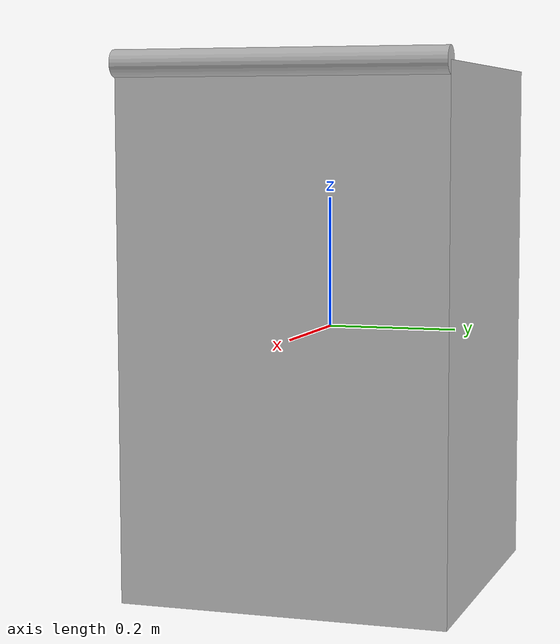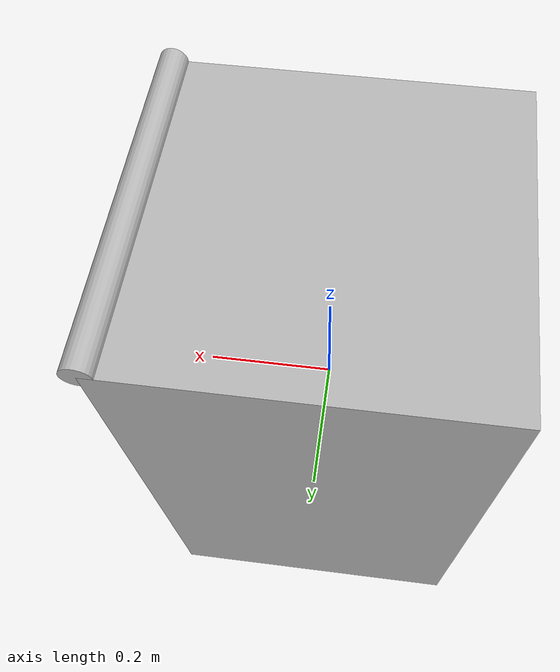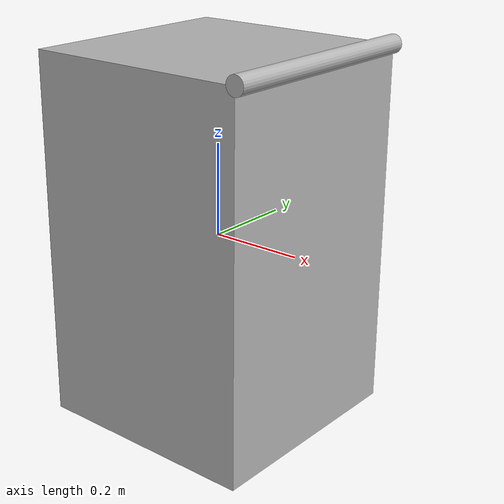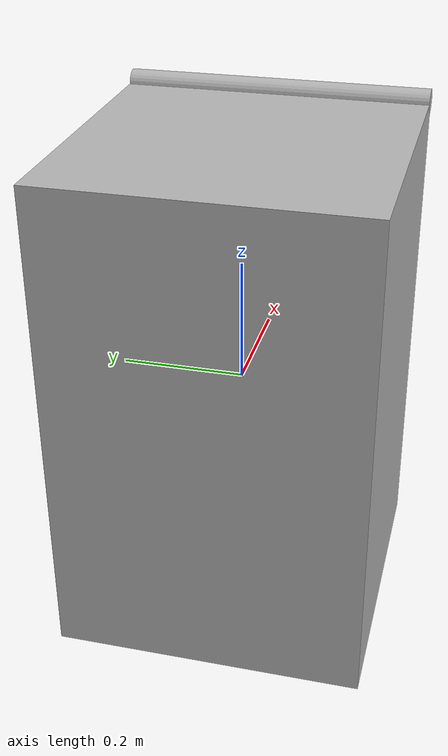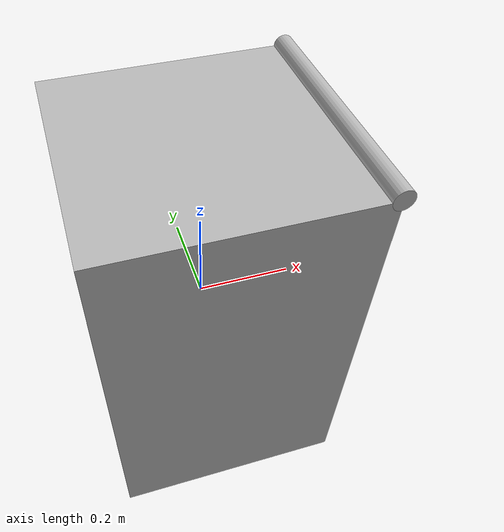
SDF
<?xml version='1.0'?>
<sdf version='1.7'>
  <model name='table_model'>
    <link name='base_link'>
      <inertial>
        <pose>0.00495 -0.00396 0.003964 0 -0 0</pose>
        <mass>1.01</mass>
        <inertia>
          <ixx>0.103271</ixx>
          <ixy>0.0019802</ixy>
          <ixz>-0.00198177</ixz>
          <iyy>0.104162</iyy>
          <iyz>0.00158542</iyz>
          <izz>0.104159</izz>
        </inertia>
      </inertial>
      <self_collide>0</self_collide>
      <enable_wind>0</enable_wind>
      <kinematic>0</kinematic>
      <pose>0 0 0 0 -0 0</pose>
      <visual name='base_link_visual'>
        <pose>0 0 0 0 -0 0</pose>
        <geometry>
          <box>
            <size>0.5 0.5 0.8</size>
          </box>
        </geometry>
        <material>
          <shader type='pixel'/>
        </material>
        <transparency>0</transparency>
        <cast_shadows>1</cast_shadows>
      </visual>
      <visual name='base_link_fixed_joint_lump__handle_link_visual_1'>
        <pose>0.25 0 0.4 1.57 -0 0</pose>
        <geometry>
          <cylinder>
            <length>0.5</length>
            <radius>0.02</radius>
          </cylinder>
        </geometry>
        <material>
          <shader type='pixel'/>
        </material>
        <transparency>0</transparency>
        <cast_shadows>1</cast_shadows>
      </visual>
      <collision name='base_link_collision'>
        <laser_retro>0</laser_retro>
        <max_contacts>10</max_contacts>
        <pose>0 0 0 0 -0 0</pose>
        <geometry>
          <box>
            <size>0.5 0.5 0.8</size>
          </box>
        </geometry>
        <surface>
          <friction>
            <ode>
              <mu>1</mu>
              <mu2>1</mu2>
              <fdir1>0 0 0</fdir1>
              <slip1>0</slip1>
              <slip2>0</slip2>
            </ode>
            <torsional>
              <coefficient>1</coefficient>
              <patch_radius>0</patch_radius>
              <surface_radius>0</surface_radius>
              <use_patch_radius>1</use_patch_radius>
              <ode>
                <slip>0</slip>
              </ode>
            </torsional>
          </friction>
          <bounce>
            <restitution_coefficient>0</restitution_coefficient>
            <threshold>1e+06</threshold>
          </bounce>
          <contact>
            <collide_without_contact>0</collide_without_contact>
            <collide_without_contact_bitmask>1</collide_without_contact_bitmask>
            <collide_bitmask>1</collide_bitmask>
            <ode>
              <soft_cfm>0</soft_cfm>
              <soft_erp>0.2</soft_erp>
              <kp>1e+13</kp>
              <kd>1</kd>
              <max_vel>0.01</max_vel>
              <min_depth>0</min_depth>
            </ode>
            <bullet>
              <split_impulse>1</split_impulse>
              <split_impulse_penetration_threshold>-0.01</split_impulse_penetration_threshold>
              <soft_cfm>0</soft_cfm>
              <soft_erp>0.2</soft_erp>
              <kp>1e+13</kp>
              <kd>1</kd>
            </bullet>
          </contact>
        </surface>
      </collision>
      <collision name='base_link_fixed_joint_lump__handle_link_collision_1'>
        <laser_retro>0</laser_retro>
        <max_contacts>10</max_contacts>
        <pose>0.25 0 0.4 1.57 -0 0</pose>
        <geometry>
          <cylinder>
            <radius>0.02</radius>
            <length>0.5</length>
          </cylinder>
        </geometry>
        <surface>
          <friction>
            <ode>
              <mu>1</mu>
              <mu2>1</mu2>
              <fdir1>0 0 0</fdir1>
              <slip1>0</slip1>
              <slip2>0</slip2>
            </ode>
            <torsional>
              <coefficient>1</coefficient>
              <patch_radius>0</patch_radius>
              <surface_radius>0</surface_radius>
              <use_patch_radius>1</use_patch_radius>
              <ode>
                <slip>0</slip>
              </ode>
            </torsional>
          </friction>
          <bounce>
            <restitution_coefficient>0</restitution_coefficient>
            <threshold>1e+06</threshold>
          </bounce>
          <contact>
            <collide_without_contact>0</collide_without_contact>
            <collide_without_contact_bitmask>1</collide_without_contact_bitmask>
            <collide_bitmask>1</collide_bitmask>
            <ode>
              <soft_cfm>0</soft_cfm>
              <soft_erp>0.2</soft_erp>
              <kp>1e+13</kp>
              <kd>1</kd>
              <max_vel>0.01</max_vel>
              <min_depth>0</min_depth>
            </ode>
            <bullet>
              <split_impulse>1</split_impulse>
              <split_impulse_penetration_threshold>-0.01</split_impulse_penetration_threshold>
              <soft_cfm>0</soft_cfm>
              <soft_erp>0.2</soft_erp>
              <kp>1e+13</kp>
              <kd>1</kd>
            </bullet>
          </contact>
        </surface>
      </collision>
    </link>
    <static>0</static>
    <allow_auto_disable>1</allow_auto_disable>
  </model>
</sdf>
